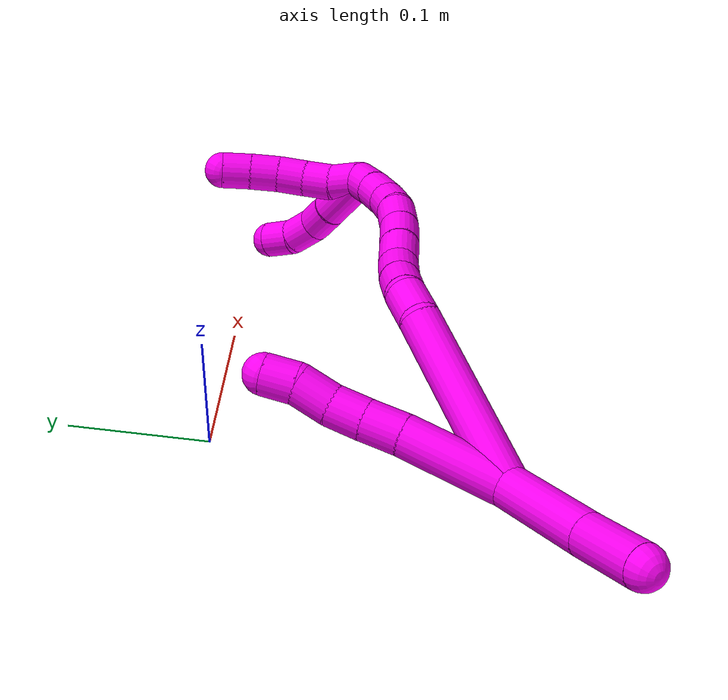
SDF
<sdf version="1.7">
 <world name="default">
  <model name="10">
   <static>0</static>
   <link name="10">
    <collision name="collision-cylinder-e_1_2_8">
     <pose>0.00884 0.016313 -0.025275 -2.56845 0.285797 -0.908412</pose>
     <geometry><cylinder><radius>0.0125</radius><length>0.062709</length></cylinder></geometry>
     <surface>
      <friction><ode><mu>1.16</mu><mu2>1.16</mu2><slip1>0</slip1><slip2>0</slip2></ode></friction>
      <contact><ode><kp>1e+06</kp><kd>1</kd><max_vel>0</max_vel><min_depth>0.001</min_depth></ode></contact>
     </surface>
    </collision>
    <visual name="visual-cylinder-e_1_2_8">
     <pose>0.00884 0.016313 -0.025275 -2.56845 0.285797 -0.908412</pose>
     <geometry><cylinder><radius>0.0125</radius><length>0.062709</length></cylinder></geometry>
     <material><ambient>1 0 0.964706 1</ambient></material>
    </visual>
    <collision name="collision-cylinder-e_2_8_9">
     <pose>0.02055 0.039485 -0.059452 -2.48501 0.250121 -0.707154</pose>
     <geometry><cylinder><radius>0.0125</radius><length>0.023197</length></cylinder></geometry>
     <surface>
      <friction><ode><mu>1.16</mu><mu2>1.16</mu2><slip1>0</slip1><slip2>0</slip2></ode></friction>
      <contact><ode><kp>1e+06</kp><kd>1</kd><max_vel>0</max_vel><min_depth>0.001</min_depth></ode></contact>
     </surface>
    </collision>
    <visual name="visual-cylinder-e_2_8_9">
     <pose>0.02055 0.039485 -0.059452 -2.48501 0.250121 -0.707154</pose>
     <geometry><cylinder><radius>0.0125</radius><length>0.023197</length></cylinder></geometry>
     <material><ambient>1 0 0.964706 1</ambient></material>
    </visual>
    <collision name="collision-cylinder-e_3_9_10">
     <pose>0.026431 0.052512 -0.076249 -2.47856 0.291851 -0.807067</pose>
     <geometry><cylinder><radius>0.0125</radius><length>0.020922</length></cylinder></geometry>
     <surface>
      <friction><ode><mu>1.16</mu><mu2>1.16</mu2><slip1>0</slip1><slip2>0</slip2></ode></friction>
      <contact><ode><kp>1e+06</kp><kd>1</kd><max_vel>0</max_vel><min_depth>0.001</min_depth></ode></contact>
     </surface>
    </collision>
    <visual name="visual-cylinder-e_3_9_10">
     <pose>0.026431 0.052512 -0.076249 -2.47856 0.291851 -0.807067</pose>
     <geometry><cylinder><radius>0.0125</radius><length>0.020922</length></cylinder></geometry>
     <material><ambient>1 0 0.964706 1</ambient></material>
    </visual>
    <collision name="collision-cylinder-e_4_10_11">
     <pose>0.034739 0.06501 -0.091892 -2.45634 0.486985 -1.21668</pose>
     <geometry><cylinder><radius>0.0125</radius><length>0.022643</length></cylinder></geometry>
     <surface>
      <friction><ode><mu>1.16</mu><mu2>1.16</mu2><slip1>0</slip1><slip2>0</slip2></ode></friction>
      <contact><ode><kp>1e+06</kp><kd>1</kd><max_vel>0</max_vel><min_depth>0.001</min_depth></ode></contact>
     </surface>
    </collision>
    <visual name="visual-cylinder-e_4_10_11">
     <pose>0.034739 0.06501 -0.091892 -2.45634 0.486985 -1.21668</pose>
     <geometry><cylinder><radius>0.0125</radius><length>0.022643</length></cylinder></geometry>
     <material><ambient>1 0 0.964706 1</ambient></material>
    </visual>
    <collision name="collision-cylinder-e_5_11_6">
     <pose>0.042229 0.078501 -0.106661 -2.34659 0.215194 -0.503615</pose>
     <geometry><cylinder><radius>0.0125</radius><length>0.020529</length></cylinder></geometry>
     <surface>
      <friction><ode><mu>1.16</mu><mu2>1.16</mu2><slip1>0</slip1><slip2>0</slip2></ode></friction>
      <contact><ode><kp>1e+06</kp><kd>1</kd><max_vel>0</max_vel><min_depth>0.001</min_depth></ode></contact>
     </surface>
    </collision>
    <visual name="visual-cylinder-e_5_11_6">
     <pose>0.042229 0.078501 -0.106661 -2.34659 0.215194 -0.503615</pose>
     <geometry><cylinder><radius>0.0125</radius><length>0.020529</length></cylinder></geometry>
     <material><ambient>1 0 0.964706 1</ambient></material>
    </visual>
    <collision name="collision-cylinder-e_1_2_12">
     <pose>-0.000506 -0.002329 0.029891 0.077744 -0.016884 -0.000657</pose>
     <geometry><cylinder><radius>0.0125</radius><length>0.059973</length></cylinder></geometry>
     <surface>
      <friction><ode><mu>1.16</mu><mu2>1.16</mu2><slip1>0</slip1><slip2>0</slip2></ode></friction>
      <contact><ode><kp>1e+06</kp><kd>1</kd><max_vel>0</max_vel><min_depth>0.001</min_depth></ode></contact>
     </surface>
    </collision>
    <visual name="visual-cylinder-e_1_2_12">
     <pose>-0.000506 -0.002329 0.029891 0.077744 -0.016884 -0.000657</pose>
     <geometry><cylinder><radius>0.0125</radius><length>0.059973</length></cylinder></geometry>
     <material><ambient>1 0 0.964706 1</ambient></material>
    </visual>
    <collision name="collision-cylinder-e_2_12_5">
     <pose>0.000752 -0.004662 0.079719 0.000231 0.088288 1e-05</pose>
     <geometry><cylinder><radius>0.0125</radius><length>0.040027</length></cylinder></geometry>
     <surface>
      <friction><ode><mu>1.16</mu><mu2>1.16</mu2><slip1>0</slip1><slip2>0</slip2></ode></friction>
      <contact><ode><kp>1e+06</kp><kd>1</kd><max_vel>0</max_vel><min_depth>0.001</min_depth></ode></contact>
     </surface>
    </collision>
    <visual name="visual-cylinder-e_2_12_5">
     <pose>0.000752 -0.004662 0.079719 0.000231 0.088288 1e-05</pose>
     <geometry><cylinder><radius>0.0125</radius><length>0.040027</length></cylinder></geometry>
     <material><ambient>1 0 0.964706 1</ambient></material>
    </visual>
    <collision name="collision-cylinder-e_1_2_13">
     <pose>0.031724 -0.002782 -0.046235 3.0815 0.600524 2.94807</pose>
     <geometry><cylinder><radius>0.0125</radius><length>0.112282</length></cylinder></geometry>
     <surface>
      <friction><ode><mu>1.16</mu><mu2>1.16</mu2><slip1>0</slip1><slip2>0</slip2></ode></friction>
      <contact><ode><kp>1e+06</kp><kd>1</kd><max_vel>0</max_vel><min_depth>0.001</min_depth></ode></contact>
     </surface>
    </collision>
    <visual name="visual-cylinder-e_1_2_13">
     <pose>0.031724 -0.002782 -0.046235 3.0815 0.600524 2.94807</pose>
     <geometry><cylinder><radius>0.0125</radius><length>0.112282</length></cylinder></geometry>
     <material><ambient>1 0 0.964706 1</ambient></material>
    </visual>
    <collision name="collision-cylinder-e_2_13_14">
     <pose>0.067211 -0.007718 -0.10325 2.94428 0.329832 2.06854</pose>
     <geometry><cylinder><radius>0.0125</radius><length>0.023239</length></cylinder></geometry>
     <surface>
      <friction><ode><mu>1.16</mu><mu2>1.16</mu2><slip1>0</slip1><slip2>0</slip2></ode></friction>
      <contact><ode><kp>1e+06</kp><kd>1</kd><max_vel>0</max_vel><min_depth>0.001</min_depth></ode></contact>
     </surface>
    </collision>
    <visual name="visual-cylinder-e_2_13_14">
     <pose>0.067211 -0.007718 -0.10325 2.94428 0.329832 2.06854</pose>
     <geometry><cylinder><radius>0.0125</radius><length>0.023239</length></cylinder></geometry>
     <material><ambient>1 0 0.964706 1</ambient></material>
    </visual>
    <collision name="collision-cylinder-e_3_14_15">
     <pose>0.0716 -0.014097 -0.123773 2.73251 0.058834 0.281823</pose>
     <geometry><cylinder><radius>0.0125</radius><length>0.021276</length></cylinder></geometry>
     <surface>
      <friction><ode><mu>1.16</mu><mu2>1.16</mu2><slip1>0</slip1><slip2>0</slip2></ode></friction>
      <contact><ode><kp>1e+06</kp><kd>1</kd><max_vel>0</max_vel><min_depth>0.001</min_depth></ode></contact>
     </surface>
    </collision>
    <visual name="visual-cylinder-e_3_14_15">
     <pose>0.0716 -0.014097 -0.123773 2.73251 0.058834 0.281823</pose>
     <geometry><cylinder><radius>0.0125</radius><length>0.021276</length></cylinder></geometry>
     <material><ambient>1 0 0.964706 1</ambient></material>
    </visual>
    <collision name="collision-cylinder-e_4_15_16">
     <pose>0.073062 -0.023406 -0.142352 2.6194 0.081828 0.304055</pose>
     <geometry><cylinder><radius>0.0125</radius><length>0.020456</length></cylinder></geometry>
     <surface>
      <friction><ode><mu>1.16</mu><mu2>1.16</mu2><slip1>0</slip1><slip2>0</slip2></ode></friction>
      <contact><ode><kp>1e+06</kp><kd>1</kd><max_vel>0</max_vel><min_depth>0.001</min_depth></ode></contact>
     </surface>
    </collision>
    <visual name="visual-cylinder-e_4_15_16">
     <pose>0.073062 -0.023406 -0.142352 2.6194 0.081828 0.304055</pose>
     <geometry><cylinder><radius>0.0125</radius><length>0.020456</length></cylinder></geometry>
     <material><ambient>1 0 0.964706 1</ambient></material>
    </visual>
    <collision name="collision-cylinder-e_5_16_17">
     <pose>0.07691 -0.034331 -0.159648 2.53739 0.284963 0.862808</pose>
     <geometry><cylinder><radius>0.0125</radius><length>0.021426</length></cylinder></geometry>
     <surface>
      <friction><ode><mu>1.16</mu><mu2>1.16</mu2><slip1>0</slip1><slip2>0</slip2></ode></friction>
      <contact><ode><kp>1e+06</kp><kd>1</kd><max_vel>0</max_vel><min_depth>0.001</min_depth></ode></contact>
     </surface>
    </collision>
    <visual name="visual-cylinder-e_5_16_17">
     <pose>0.07691 -0.034331 -0.159648 2.53739 0.284963 0.862808</pose>
     <geometry><cylinder><radius>0.0125</radius><length>0.021426</length></cylinder></geometry>
     <material><ambient>1 0 0.964706 1</ambient></material>
    </visual>
    <collision name="collision-cylinder-e_6_17_18">
     <pose>0.082301 -0.045598 -0.176655 2.57587 0.230876 0.759184</pose>
     <geometry><cylinder><radius>0.0125</radius><length>0.020798</length></cylinder></geometry>
     <surface>
      <friction><ode><mu>1.16</mu><mu2>1.16</mu2><slip1>0</slip1><slip2>0</slip2></ode></friction>
      <contact><ode><kp>1e+06</kp><kd>1</kd><max_vel>0</max_vel><min_depth>0.001</min_depth></ode></contact>
     </surface>
    </collision>
    <visual name="visual-cylinder-e_6_17_18">
     <pose>0.082301 -0.045598 -0.176655 2.57587 0.230876 0.759184</pose>
     <geometry><cylinder><radius>0.0125</radius><length>0.020798</length></cylinder></geometry>
     <material><ambient>1 0 0.964706 1</ambient></material>
    </visual>
    <collision name="collision-cylinder-e_7_18_19">
     <pose>0.087276 -0.05525 -0.193897 2.68928 0.262309 1.04111</pose>
     <geometry><cylinder><radius>0.0125</radius><length>0.020021</length></cylinder></geometry>
     <surface>
      <friction><ode><mu>1.16</mu><mu2>1.16</mu2><slip1>0</slip1><slip2>0</slip2></ode></friction>
      <contact><ode><kp>1e+06</kp><kd>1</kd><max_vel>0</max_vel><min_depth>0.001</min_depth></ode></contact>
     </surface>
    </collision>
    <visual name="visual-cylinder-e_7_18_19">
     <pose>0.087276 -0.05525 -0.193897 2.68928 0.262309 1.04111</pose>
     <geometry><cylinder><radius>0.0125</radius><length>0.020021</length></cylinder></geometry>
     <material><ambient>1 0 0.964706 1</ambient></material>
    </visual>
    <collision name="collision-cylinder-e_8_19_20">
     <pose>0.090405 -0.062292 -0.212388 2.86152 0.052259 0.366652</pose>
     <geometry><cylinder><radius>0.0125</radius><length>0.020413</length></cylinder></geometry>
     <surface>
      <friction><ode><mu>1.16</mu><mu2>1.16</mu2><slip1>0</slip1><slip2>0</slip2></ode></friction>
      <contact><ode><kp>1e+06</kp><kd>1</kd><max_vel>0</max_vel><min_depth>0.001</min_depth></ode></contact>
     </surface>
    </collision>
    <visual name="visual-cylinder-e_8_19_20">
     <pose>0.090405 -0.062292 -0.212388 2.86152 0.052259 0.366652</pose>
     <geometry><cylinder><radius>0.0125</radius><length>0.020413</length></cylinder></geometry>
     <material><ambient>1 0 0.964706 1</ambient></material>
    </visual>
    <collision name="collision-cylinder-e_9_20_21">
     <pose>0.09218 -0.066069 -0.232098 3.04515 0.124007 1.82008</pose>
     <geometry><cylinder><radius>0.0125</radius><length>0.020078</length></cylinder></geometry>
     <surface>
      <friction><ode><mu>1.16</mu><mu2>1.16</mu2><slip1>0</slip1><slip2>0</slip2></ode></friction>
      <contact><ode><kp>1e+06</kp><kd>1</kd><max_vel>0</max_vel><min_depth>0.001</min_depth></ode></contact>
     </surface>
    </collision>
    <visual name="visual-cylinder-e_9_20_21">
     <pose>0.09218 -0.066069 -0.232098 3.04515 0.124007 1.82008</pose>
     <geometry><cylinder><radius>0.0125</radius><length>0.020078</length></cylinder></geometry>
     <material><ambient>1 0 0.964706 1</ambient></material>
    </visual>
    <collision name="collision-cylinder-e_10_21_1">
     <pose>0.094234 -0.067415 -0.251979 3.10281 0.081248 2.25119</pose>
     <geometry><cylinder><radius>0.0125</radius><length>0.020011</length></cylinder></geometry>
     <surface>
      <friction><ode><mu>1.16</mu><mu2>1.16</mu2><slip1>0</slip1><slip2>0</slip2></ode></friction>
      <contact><ode><kp>1e+06</kp><kd>1</kd><max_vel>0</max_vel><min_depth>0.001</min_depth></ode></contact>
     </surface>
    </collision>
    <visual name="visual-cylinder-e_10_21_1">
     <pose>0.094234 -0.067415 -0.251979 3.10281 0.081248 2.25119</pose>
     <geometry><cylinder><radius>0.0125</radius><length>0.020011</length></cylinder></geometry>
     <material><ambient>1 0 0.964706 1</ambient></material>
    </visual>
    <collision name="collision-cylinder-e_1_1_22">
     <pose>0.08218 -0.062472 -0.274518 -2.74069 -0.755584 2.19522</pose>
     <geometry><cylinder><radius>0.0125</radius><length>0.037525</length></cylinder></geometry>
     <surface>
      <friction><ode><mu>1.16</mu><mu2>1.16</mu2><slip1>0</slip1><slip2>0</slip2></ode></friction>
      <contact><ode><kp>1e+06</kp><kd>1</kd><max_vel>0</max_vel><min_depth>0.001</min_depth></ode></contact>
     </surface>
    </collision>
    <visual name="visual-cylinder-e_1_1_22">
     <pose>0.08218 -0.062472 -0.274518 -2.74069 -0.755584 2.19522</pose>
     <geometry><cylinder><radius>0.0125</radius><length>0.037525</length></cylinder></geometry>
     <material><ambient>1 0 0.964706 1</ambient></material>
    </visual>
    <collision name="collision-cylinder-e_2_22_23">
     <pose>0.062194 -0.0547 -0.294764 -2.8334 -0.724092 2.36319</pose>
     <geometry><cylinder><radius>0.0125</radius><length>0.021496</length></cylinder></geometry>
     <surface>
      <friction><ode><mu>1.16</mu><mu2>1.16</mu2><slip1>0</slip1><slip2>0</slip2></ode></friction>
      <contact><ode><kp>1e+06</kp><kd>1</kd><max_vel>0</max_vel><min_depth>0.001</min_depth></ode></contact>
     </surface>
    </collision>
    <visual name="visual-cylinder-e_2_22_23">
     <pose>0.062194 -0.0547 -0.294764 -2.8334 -0.724092 2.36319</pose>
     <geometry><cylinder><radius>0.0125</radius><length>0.021496</length></cylinder></geometry>
     <material><ambient>1 0 0.964706 1</ambient></material>
    </visual>
    <collision name="collision-cylinder-e_3_23_24">
     <pose>0.049491 -0.046742 -0.309346 -2.46795 -0.563177 1.38093</pose>
     <geometry><cylinder><radius>0.0125</radius><length>0.020914</length></cylinder></geometry>
     <surface>
      <friction><ode><mu>1.16</mu><mu2>1.16</mu2><slip1>0</slip1><slip2>0</slip2></ode></friction>
      <contact><ode><kp>1e+06</kp><kd>1</kd><max_vel>0</max_vel><min_depth>0.001</min_depth></ode></contact>
     </surface>
    </collision>
    <visual name="visual-cylinder-e_3_23_24">
     <pose>0.049491 -0.046742 -0.309346 -2.46795 -0.563177 1.38093</pose>
     <geometry><cylinder><radius>0.0125</radius><length>0.020914</length></cylinder></geometry>
     <material><ambient>1 0 0.964706 1</ambient></material>
    </visual>
    <collision name="collision-cylinder-e_4_24_4">
     <pose>0.041619 -0.035899 -0.324444 -2.56474 -0.23021 0.743142</pose>
     <geometry><cylinder><radius>0.0125</radius><length>0.020065</length></cylinder></geometry>
     <surface>
      <friction><ode><mu>1.16</mu><mu2>1.16</mu2><slip1>0</slip1><slip2>0</slip2></ode></friction>
      <contact><ode><kp>1e+06</kp><kd>1</kd><max_vel>0</max_vel><min_depth>0.001</min_depth></ode></contact>
     </surface>
    </collision>
    <visual name="visual-cylinder-e_4_24_4">
     <pose>0.041619 -0.035899 -0.324444 -2.56474 -0.23021 0.743142</pose>
     <geometry><cylinder><radius>0.0125</radius><length>0.020065</length></cylinder></geometry>
     <material><ambient>1 0 0.964706 1</ambient></material>
    </visual>
    <collision name="collision-cylinder-e_1_1_25">
     <pose>0.093462 -0.061407 -0.269468 -2.43716 -0.159029 0.426988</pose>
     <geometry><cylinder><radius>0.0125</radius><length>0.02</length></cylinder></geometry>
     <surface>
      <friction><ode><mu>1.16</mu><mu2>1.16</mu2><slip1>0</slip1><slip2>0</slip2></ode></friction>
      <contact><ode><kp>1e+06</kp><kd>1</kd><max_vel>0</max_vel><min_depth>0.001</min_depth></ode></contact>
     </surface>
    </collision>
    <visual name="visual-cylinder-e_1_1_25">
     <pose>0.093462 -0.061407 -0.269468 -2.43716 -0.159029 0.426988</pose>
     <geometry><cylinder><radius>0.0125</radius><length>0.02</length></cylinder></geometry>
     <material><ambient>1 0 0.964706 1</ambient></material>
    </visual>
    <collision name="collision-cylinder-e_2_25_26">
     <pose>0.092674 -0.048603 -0.284625 -2.44306 0.079581 -0.217761</pose>
     <geometry><cylinder><radius>0.0125</radius><length>0.02</length></cylinder></geometry>
     <surface>
      <friction><ode><mu>1.16</mu><mu2>1.16</mu2><slip1>0</slip1><slip2>0</slip2></ode></friction>
      <contact><ode><kp>1e+06</kp><kd>1</kd><max_vel>0</max_vel><min_depth>0.001</min_depth></ode></contact>
     </surface>
    </collision>
    <visual name="visual-cylinder-e_2_25_26">
     <pose>0.092674 -0.048603 -0.284625 -2.44306 0.079581 -0.217761</pose>
     <geometry><cylinder><radius>0.0125</radius><length>0.02</length></cylinder></geometry>
     <material><ambient>1 0 0.964706 1</ambient></material>
    </visual>
    <collision name="collision-cylinder-e_3_26_27">
     <pose>0.094947 -0.034762 -0.298786 -2.29163 0.148353 -0.325506</pose>
     <geometry><cylinder><radius>0.0125</radius><length>0.02</length></cylinder></geometry>
     <surface>
      <friction><ode><mu>1.16</mu><mu2>1.16</mu2><slip1>0</slip1><slip2>0</slip2></ode></friction>
      <contact><ode><kp>1e+06</kp><kd>1</kd><max_vel>0</max_vel><min_depth>0.001</min_depth></ode></contact>
     </surface>
    </collision>
    <visual name="visual-cylinder-e_3_26_27">
     <pose>0.094947 -0.034762 -0.298786 -2.29163 0.148353 -0.325506</pose>
     <geometry><cylinder><radius>0.0125</radius><length>0.02</length></cylinder></geometry>
     <material><ambient>1 0 0.964706 1</ambient></material>
    </visual>
    <collision name="collision-cylinder-e_4_27_28">
     <pose>0.097701 -0.018841 -0.31044 -2.11392 0.127936 -0.226016</pose>
     <geometry><cylinder><radius>0.0125</radius><length>0.02</length></cylinder></geometry>
     <surface>
      <friction><ode><mu>1.16</mu><mu2>1.16</mu2><slip1>0</slip1><slip2>0</slip2></ode></friction>
      <contact><ode><kp>1e+06</kp><kd>1</kd><max_vel>0</max_vel><min_depth>0.001</min_depth></ode></contact>
     </surface>
    </collision>
    <visual name="visual-cylinder-e_4_27_28">
     <pose>0.097701 -0.018841 -0.31044 -2.11392 0.127936 -0.226016</pose>
     <geometry><cylinder><radius>0.0125</radius><length>0.02</length></cylinder></geometry>
     <material><ambient>1 0 0.964706 1</ambient></material>
    </visual>
    <collision name="collision-cylinder-e_5_28_3">
     <pose>0.100031 -0.001495 -0.32009 -2.0432 0.105645 -0.172356</pose>
     <geometry><cylinder><radius>0.0125</radius><length>0.02</length></cylinder></geometry>
     <surface>
      <friction><ode><mu>1.16</mu><mu2>1.16</mu2><slip1>0</slip1><slip2>0</slip2></ode></friction>
      <contact><ode><kp>1e+06</kp><kd>1</kd><max_vel>0</max_vel><min_depth>0.001</min_depth></ode></contact>
     </surface>
    </collision>
    <visual name="visual-cylinder-e_5_28_3">
     <pose>0.100031 -0.001495 -0.32009 -2.0432 0.105645 -0.172356</pose>
     <geometry><cylinder><radius>0.0125</radius><length>0.02</length></cylinder></geometry>
     <material><ambient>1 0 0.964706 1</ambient></material>
    </visual>
    <collision name="collision-sphere-3">
     <pose>0.101085 0.00736 -0.324615 0 -0 0</pose>
     <geometry><sphere><radius>0.0125</radius></sphere></geometry>
     <surface>
      <friction><ode><mu>1.16</mu><mu2>1.16</mu2><slip1>0</slip1><slip2>0</slip2></ode></friction>
      <contact><ode><kp>1e+06</kp><kd>1</kd><max_vel>0</max_vel><min_depth>0.001</min_depth></ode></contact>
     </surface>
    </collision>
    <visual name="visual-sphere-3">
     <pose>0.101085 0.00736 -0.324615 0 -0 0</pose>
     <geometry><sphere><radius>0.0125</radius></sphere></geometry>
     <material><ambient>1 0 0.964706 1</ambient></material>
    </visual>
    <collision name="collision-sphere-28">
     <pose>0.098976 -0.01035 -0.315566 0 -0 0</pose>
     <geometry><sphere><radius>0.0125</radius></sphere></geometry>
     <surface>
      <friction><ode><mu>1.16</mu><mu2>1.16</mu2><slip1>0</slip1><slip2>0</slip2></ode></friction>
      <contact><ode><kp>1e+06</kp><kd>1</kd><max_vel>0</max_vel><min_depth>0.001</min_depth></ode></contact>
     </surface>
    </collision>
    <visual name="visual-sphere-28">
     <pose>0.098976 -0.01035 -0.315566 0 -0 0</pose>
     <geometry><sphere><radius>0.0125</radius></sphere></geometry>
     <material><ambient>1 0 0.964706 1</ambient></material>
    </visual>
    <collision name="collision-sphere-27">
     <pose>0.096425 -0.027332 -0.305314 0 -0 0</pose>
     <geometry><sphere><radius>0.0125</radius></sphere></geometry>
     <surface>
      <friction><ode><mu>1.16</mu><mu2>1.16</mu2><slip1>0</slip1><slip2>0</slip2></ode></friction>
      <contact><ode><kp>1e+06</kp><kd>1</kd><max_vel>0</max_vel><min_depth>0.001</min_depth></ode></contact>
     </surface>
    </collision>
    <visual name="visual-sphere-27">
     <pose>0.096425 -0.027332 -0.305314 0 -0 0</pose>
     <geometry><sphere><radius>0.0125</radius></sphere></geometry>
     <material><ambient>1 0 0.964706 1</ambient></material>
    </visual>
    <collision name="collision-sphere-26">
     <pose>0.093469 -0.042192 -0.292258 0 -0 0</pose>
     <geometry><sphere><radius>0.0125</radius></sphere></geometry>
     <surface>
      <friction><ode><mu>1.16</mu><mu2>1.16</mu2><slip1>0</slip1><slip2>0</slip2></ode></friction>
      <contact><ode><kp>1e+06</kp><kd>1</kd><max_vel>0</max_vel><min_depth>0.001</min_depth></ode></contact>
     </surface>
    </collision>
    <visual name="visual-sphere-26">
     <pose>0.093469 -0.042192 -0.292258 0 -0 0</pose>
     <geometry><sphere><radius>0.0125</radius></sphere></geometry>
     <material><ambient>1 0 0.964706 1</ambient></material>
    </visual>
    <collision name="collision-sphere-25">
     <pose>0.091879 -0.055013 -0.276991 0 -0 0</pose>
     <geometry><sphere><radius>0.0125</radius></sphere></geometry>
     <surface>
      <friction><ode><mu>1.16</mu><mu2>1.16</mu2><slip1>0</slip1><slip2>0</slip2></ode></friction>
      <contact><ode><kp>1e+06</kp><kd>1</kd><max_vel>0</max_vel><min_depth>0.001</min_depth></ode></contact>
     </surface>
    </collision>
    <visual name="visual-sphere-25">
     <pose>0.091879 -0.055013 -0.276991 0 -0 0</pose>
     <geometry><sphere><radius>0.0125</radius></sphere></geometry>
     <material><ambient>1 0 0.964706 1</ambient></material>
    </visual>
    <collision name="collision-sphere-4">
     <pose>0.03933 -0.030572 -0.332631 0 -0 0</pose>
     <geometry><sphere><radius>0.0125</radius></sphere></geometry>
     <surface>
      <friction><ode><mu>1.16</mu><mu2>1.16</mu2><slip1>0</slip1><slip2>0</slip2></ode></friction>
      <contact><ode><kp>1e+06</kp><kd>1</kd><max_vel>0</max_vel><min_depth>0.001</min_depth></ode></contact>
     </surface>
    </collision>
    <visual name="visual-sphere-4">
     <pose>0.03933 -0.030572 -0.332631 0 -0 0</pose>
     <geometry><sphere><radius>0.0125</radius></sphere></geometry>
     <material><ambient>1 0 0.964706 1</ambient></material>
    </visual>
    <collision name="collision-sphere-24">
     <pose>0.043909 -0.041226 -0.316257 0 -0 0</pose>
     <geometry><sphere><radius>0.0125</radius></sphere></geometry>
     <surface>
      <friction><ode><mu>1.16</mu><mu2>1.16</mu2><slip1>0</slip1><slip2>0</slip2></ode></friction>
      <contact><ode><kp>1e+06</kp><kd>1</kd><max_vel>0</max_vel><min_depth>0.001</min_depth></ode></contact>
     </surface>
    </collision>
    <visual name="visual-sphere-24">
     <pose>0.043909 -0.041226 -0.316257 0 -0 0</pose>
     <geometry><sphere><radius>0.0125</radius></sphere></geometry>
     <material><ambient>1 0 0.964706 1</ambient></material>
    </visual>
    <collision name="collision-sphere-23">
     <pose>0.055074 -0.052258 -0.302436 0 -0 0</pose>
     <geometry><sphere><radius>0.0125</radius></sphere></geometry>
     <surface>
      <friction><ode><mu>1.16</mu><mu2>1.16</mu2><slip1>0</slip1><slip2>0</slip2></ode></friction>
      <contact><ode><kp>1e+06</kp><kd>1</kd><max_vel>0</max_vel><min_depth>0.001</min_depth></ode></contact>
     </surface>
    </collision>
    <visual name="visual-sphere-23">
     <pose>0.055074 -0.052258 -0.302436 0 -0 0</pose>
     <geometry><sphere><radius>0.0125</radius></sphere></geometry>
     <material><ambient>1 0 0.964706 1</ambient></material>
    </visual>
    <collision name="collision-sphere-22">
     <pose>0.069314 -0.057143 -0.287092 0 -0 0</pose>
     <geometry><sphere><radius>0.0125</radius></sphere></geometry>
     <surface>
      <friction><ode><mu>1.16</mu><mu2>1.16</mu2><slip1>0</slip1><slip2>0</slip2></ode></friction>
      <contact><ode><kp>1e+06</kp><kd>1</kd><max_vel>0</max_vel><min_depth>0.001</min_depth></ode></contact>
     </surface>
    </collision>
    <visual name="visual-sphere-22">
     <pose>0.069314 -0.057143 -0.287092 0 -0 0</pose>
     <geometry><sphere><radius>0.0125</radius></sphere></geometry>
     <material><ambient>1 0 0.964706 1</ambient></material>
    </visual>
    <collision name="collision-sphere-1">
     <pose>0.095046 -0.067802 -0.261944 0 -0 0</pose>
     <geometry><sphere><radius>0.0125</radius></sphere></geometry>
     <surface>
      <friction><ode><mu>1.16</mu><mu2>1.16</mu2><slip1>0</slip1><slip2>0</slip2></ode></friction>
      <contact><ode><kp>1e+06</kp><kd>1</kd><max_vel>0</max_vel><min_depth>0.001</min_depth></ode></contact>
     </surface>
    </collision>
    <visual name="visual-sphere-1">
     <pose>0.095046 -0.067802 -0.261944 0 -0 0</pose>
     <geometry><sphere><radius>0.0125</radius></sphere></geometry>
     <material><ambient>1 0 0.964706 1</ambient></material>
    </visual>
    <collision name="collision-sphere-21">
     <pose>0.093422 -0.067028 -0.242014 0 -0 0</pose>
     <geometry><sphere><radius>0.0125</radius></sphere></geometry>
     <surface>
      <friction><ode><mu>1.16</mu><mu2>1.16</mu2><slip1>0</slip1><slip2>0</slip2></ode></friction>
      <contact><ode><kp>1e+06</kp><kd>1</kd><max_vel>0</max_vel><min_depth>0.001</min_depth></ode></contact>
     </surface>
    </collision>
    <visual name="visual-sphere-21">
     <pose>0.093422 -0.067028 -0.242014 0 -0 0</pose>
     <geometry><sphere><radius>0.0125</radius></sphere></geometry>
     <material><ambient>1 0 0.964706 1</ambient></material>
    </visual>
    <collision name="collision-sphere-6">
     <pose>0.04442 0.085659 -0.113683 0 -0 0</pose>
     <geometry><sphere><radius>0.0125</radius></sphere></geometry>
     <surface>
      <friction><ode><mu>1.16</mu><mu2>1.16</mu2><slip1>0</slip1><slip2>0</slip2></ode></friction>
      <contact><ode><kp>1e+06</kp><kd>1</kd><max_vel>0</max_vel><min_depth>0.001</min_depth></ode></contact>
     </surface>
    </collision>
    <visual name="visual-sphere-6">
     <pose>0.04442 0.085659 -0.113683 0 -0 0</pose>
     <geometry><sphere><radius>0.0125</radius></sphere></geometry>
     <material><ambient>1 0 0.964706 1</ambient></material>
    </visual>
    <collision name="collision-sphere-11">
     <pose>0.040037 0.071343 -0.099639 0 -0 0</pose>
     <geometry><sphere><radius>0.0125</radius></sphere></geometry>
     <surface>
      <friction><ode><mu>1.16</mu><mu2>1.16</mu2><slip1>0</slip1><slip2>0</slip2></ode></friction>
      <contact><ode><kp>1e+06</kp><kd>1</kd><max_vel>0</max_vel><min_depth>0.001</min_depth></ode></contact>
     </surface>
    </collision>
    <visual name="visual-sphere-11">
     <pose>0.040037 0.071343 -0.099639 0 -0 0</pose>
     <geometry><sphere><radius>0.0125</radius></sphere></geometry>
     <material><ambient>1 0 0.964706 1</ambient></material>
    </visual>
    <collision name="collision-sphere-10">
     <pose>0.029441 0.058678 -0.084145 0 -0 0</pose>
     <geometry><sphere><radius>0.0125</radius></sphere></geometry>
     <surface>
      <friction><ode><mu>1.16</mu><mu2>1.16</mu2><slip1>0</slip1><slip2>0</slip2></ode></friction>
      <contact><ode><kp>1e+06</kp><kd>1</kd><max_vel>0</max_vel><min_depth>0.001</min_depth></ode></contact>
     </surface>
    </collision>
    <visual name="visual-sphere-10">
     <pose>0.029441 0.058678 -0.084145 0 -0 0</pose>
     <geometry><sphere><radius>0.0125</radius></sphere></geometry>
     <material><ambient>1 0 0.964706 1</ambient></material>
    </visual>
    <collision name="collision-sphere-9">
     <pose>0.023421 0.046345 -0.068353 0 -0 0</pose>
     <geometry><sphere><radius>0.0125</radius></sphere></geometry>
     <surface>
      <friction><ode><mu>1.16</mu><mu2>1.16</mu2><slip1>0</slip1><slip2>0</slip2></ode></friction>
      <contact><ode><kp>1e+06</kp><kd>1</kd><max_vel>0</max_vel><min_depth>0.001</min_depth></ode></contact>
     </surface>
    </collision>
    <visual name="visual-sphere-9">
     <pose>0.023421 0.046345 -0.068353 0 -0 0</pose>
     <geometry><sphere><radius>0.0125</radius></sphere></geometry>
     <material><ambient>1 0 0.964706 1</ambient></material>
    </visual>
    <collision name="collision-sphere-2">
     <geometry><sphere><radius>0.0125</radius></sphere></geometry>
     <surface>
      <friction><ode><mu>1.16</mu><mu2>1.16</mu2><slip1>0</slip1><slip2>0</slip2></ode></friction>
      <contact><ode><kp>1e+06</kp><kd>1</kd><max_vel>0</max_vel><min_depth>0.001</min_depth></ode></contact>
     </surface>
    </collision>
    <visual name="visual-sphere-2">
     <geometry><sphere><radius>0.0125</radius></sphere></geometry>
     <material><ambient>1 0 0.964706 1</ambient></material>
    </visual>
    <collision name="collision-sphere-19">
     <pose>0.089872 -0.059475 -0.202592 0 -0 0</pose>
     <geometry><sphere><radius>0.0125</radius></sphere></geometry>
     <surface>
      <friction><ode><mu>1.16</mu><mu2>1.16</mu2><slip1>0</slip1><slip2>0</slip2></ode></friction>
      <contact><ode><kp>1e+06</kp><kd>1</kd><max_vel>0</max_vel><min_depth>0.001</min_depth></ode></contact>
     </surface>
    </collision>
    <visual name="visual-sphere-19">
     <pose>0.089872 -0.059475 -0.202592 0 -0 0</pose>
     <geometry><sphere><radius>0.0125</radius></sphere></geometry>
     <material><ambient>1 0 0.964706 1</ambient></material>
    </visual>
    <collision name="collision-sphere-8">
     <pose>0.017679 0.032626 -0.050551 0 -0 0</pose>
     <geometry><sphere><radius>0.0125</radius></sphere></geometry>
     <surface>
      <friction><ode><mu>1.16</mu><mu2>1.16</mu2><slip1>0</slip1><slip2>0</slip2></ode></friction>
      <contact><ode><kp>1e+06</kp><kd>1</kd><max_vel>0</max_vel><min_depth>0.001</min_depth></ode></contact>
     </surface>
    </collision>
    <visual name="visual-sphere-8">
     <pose>0.017679 0.032626 -0.050551 0 -0 0</pose>
     <geometry><sphere><radius>0.0125</radius></sphere></geometry>
     <material><ambient>1 0 0.964706 1</ambient></material>
    </visual>
    <collision name="collision-sphere-12">
     <pose>-0.001013 -0.004657 0.059783 0 -0 0</pose>
     <geometry><sphere><radius>0.0125</radius></sphere></geometry>
     <surface>
      <friction><ode><mu>1.16</mu><mu2>1.16</mu2><slip1>0</slip1><slip2>0</slip2></ode></friction>
      <contact><ode><kp>1e+06</kp><kd>1</kd><max_vel>0</max_vel><min_depth>0.001</min_depth></ode></contact>
     </surface>
    </collision>
    <visual name="visual-sphere-12">
     <pose>-0.001013 -0.004657 0.059783 0 -0 0</pose>
     <geometry><sphere><radius>0.0125</radius></sphere></geometry>
     <material><ambient>1 0 0.964706 1</ambient></material>
    </visual>
    <collision name="collision-sphere-5">
     <pose>0.002517 -0.004666 0.099654 0 -0 0</pose>
     <geometry><sphere><radius>0.0125</radius></sphere></geometry>
     <surface>
      <friction><ode><mu>1.16</mu><mu2>1.16</mu2><slip1>0</slip1><slip2>0</slip2></ode></friction>
      <contact><ode><kp>1e+06</kp><kd>1</kd><max_vel>0</max_vel><min_depth>0.001</min_depth></ode></contact>
     </surface>
    </collision>
    <visual name="visual-sphere-5">
     <pose>0.002517 -0.004666 0.099654 0 -0 0</pose>
     <geometry><sphere><radius>0.0125</radius></sphere></geometry>
     <material><ambient>1 0 0.964706 1</ambient></material>
    </visual>
    <collision name="collision-sphere-13">
     <pose>0.063448 -0.005563 -0.09247 0 -0 0</pose>
     <geometry><sphere><radius>0.0125</radius></sphere></geometry>
     <surface>
      <friction><ode><mu>1.16</mu><mu2>1.16</mu2><slip1>0</slip1><slip2>0</slip2></ode></friction>
      <contact><ode><kp>1e+06</kp><kd>1</kd><max_vel>0</max_vel><min_depth>0.001</min_depth></ode></contact>
     </surface>
    </collision>
    <visual name="visual-sphere-13">
     <pose>0.063448 -0.005563 -0.09247 0 -0 0</pose>
     <geometry><sphere><radius>0.0125</radius></sphere></geometry>
     <material><ambient>1 0 0.964706 1</ambient></material>
    </visual>
    <collision name="collision-sphere-14">
     <pose>0.070975 -0.009873 -0.11403 0 -0 0</pose>
     <geometry><sphere><radius>0.0125</radius></sphere></geometry>
     <surface>
      <friction><ode><mu>1.16</mu><mu2>1.16</mu2><slip1>0</slip1><slip2>0</slip2></ode></friction>
      <contact><ode><kp>1e+06</kp><kd>1</kd><max_vel>0</max_vel><min_depth>0.001</min_depth></ode></contact>
     </surface>
    </collision>
    <visual name="visual-sphere-14">
     <pose>0.070975 -0.009873 -0.11403 0 -0 0</pose>
     <geometry><sphere><radius>0.0125</radius></sphere></geometry>
     <material><ambient>1 0 0.964706 1</ambient></material>
    </visual>
    <collision name="collision-sphere-15">
     <pose>0.072226 -0.018321 -0.133516 0 -0 0</pose>
     <geometry><sphere><radius>0.0125</radius></sphere></geometry>
     <surface>
      <friction><ode><mu>1.16</mu><mu2>1.16</mu2><slip1>0</slip1><slip2>0</slip2></ode></friction>
      <contact><ode><kp>1e+06</kp><kd>1</kd><max_vel>0</max_vel><min_depth>0.001</min_depth></ode></contact>
     </surface>
    </collision>
    <visual name="visual-sphere-15">
     <pose>0.072226 -0.018321 -0.133516 0 -0 0</pose>
     <geometry><sphere><radius>0.0125</radius></sphere></geometry>
     <material><ambient>1 0 0.964706 1</ambient></material>
    </visual>
    <collision name="collision-sphere-16">
     <pose>0.073898 -0.02849 -0.151187 0 -0 0</pose>
     <geometry><sphere><radius>0.0125</radius></sphere></geometry>
     <surface>
      <friction><ode><mu>1.16</mu><mu2>1.16</mu2><slip1>0</slip1><slip2>0</slip2></ode></friction>
      <contact><ode><kp>1e+06</kp><kd>1</kd><max_vel>0</max_vel><min_depth>0.001</min_depth></ode></contact>
     </surface>
    </collision>
    <visual name="visual-sphere-16">
     <pose>0.073898 -0.02849 -0.151187 0 -0 0</pose>
     <geometry><sphere><radius>0.0125</radius></sphere></geometry>
     <material><ambient>1 0 0.964706 1</ambient></material>
    </visual>
    <collision name="collision-sphere-17">
     <pose>0.079921 -0.040172 -0.168109 0 -0 0</pose>
     <geometry><sphere><radius>0.0125</radius></sphere></geometry>
     <surface>
      <friction><ode><mu>1.16</mu><mu2>1.16</mu2><slip1>0</slip1><slip2>0</slip2></ode></friction>
      <contact><ode><kp>1e+06</kp><kd>1</kd><max_vel>0</max_vel><min_depth>0.001</min_depth></ode></contact>
     </surface>
    </collision>
    <visual name="visual-sphere-17">
     <pose>0.079921 -0.040172 -0.168109 0 -0 0</pose>
     <geometry><sphere><radius>0.0125</radius></sphere></geometry>
     <material><ambient>1 0 0.964706 1</ambient></material>
    </visual>
    <collision name="collision-sphere-18">
     <pose>0.08468 -0.051024 -0.185201 0 -0 0</pose>
     <geometry><sphere><radius>0.0125</radius></sphere></geometry>
     <surface>
      <friction><ode><mu>1.16</mu><mu2>1.16</mu2><slip1>0</slip1><slip2>0</slip2></ode></friction>
      <contact><ode><kp>1e+06</kp><kd>1</kd><max_vel>0</max_vel><min_depth>0.001</min_depth></ode></contact>
     </surface>
    </collision>
    <visual name="visual-sphere-18">
     <pose>0.08468 -0.051024 -0.185201 0 -0 0</pose>
     <geometry><sphere><radius>0.0125</radius></sphere></geometry>
     <material><ambient>1 0 0.964706 1</ambient></material>
    </visual>
    <collision name="collision-sphere-20">
     <pose>0.090938 -0.06511 -0.222183 0 -0 0</pose>
     <geometry><sphere><radius>0.0125</radius></sphere></geometry>
     <surface>
      <friction><ode><mu>1.16</mu><mu2>1.16</mu2><slip1>0</slip1><slip2>0</slip2></ode></friction>
      <contact><ode><kp>1e+06</kp><kd>1</kd><max_vel>0</max_vel><min_depth>0.001</min_depth></ode></contact>
     </surface>
    </collision>
    <visual name="visual-sphere-20">
     <pose>0.090938 -0.06511 -0.222183 0 -0 0</pose>
     <geometry><sphere><radius>0.0125</radius></sphere></geometry>
     <material><ambient>1 0 0.964706 1</ambient></material>
    </visual>
    <inertial>
     <pose>0.05058 -0.01431 -0.135043 0 -0 0</pose>
     <mass>0.75</mass>
     <inertia>
      <ixx>-2.4e-05</ixx>
      <ixy>0</ixy>
      <ixz>0</ixz>
      <iyy>0.000156</iyy>
      <iyz>0</iyz>
      <izz>-0.000119</izz>
     </inertia>
    </inertial>
   </link>
   <pose>-0.114277 -0.190321 0.142872 0.385605 -1.1424 0.259436</pose>
  </model>
 </world>
</sdf>
